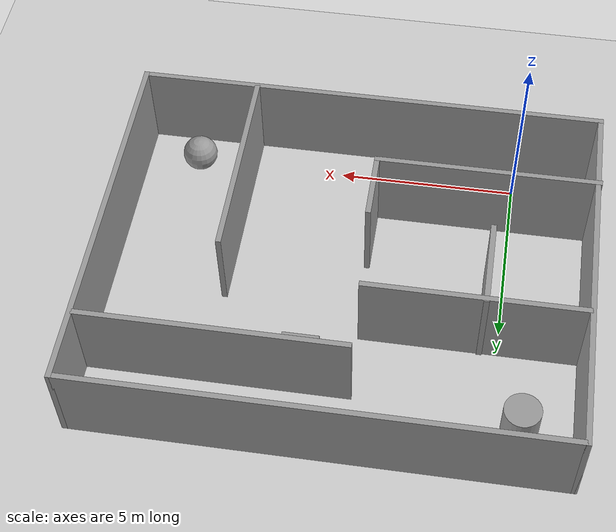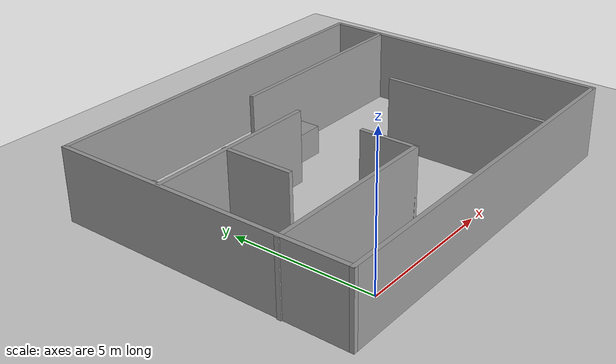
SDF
<sdf version="1.6">
 <world name="default">
  <light name="sun" type="directional">
   <pose>0 0 10 0 -0 0</pose>
   <diffuse>0.8 0.8 0.8 1</diffuse>
   <specular>0.2 0.2 0.2 1</specular>
   <attenuation>
    <range>1000</range>
    <constant>0.9</constant>
    <linear>0.01</linear>
    <quadratic>0.001</quadratic>
   </attenuation>
   <direction>-0.5 0.1 -0.9</direction>
  </light>
  <model name="ground_plane">
   <static>1</static>
   <link name="link">
    <collision name="collision">
     <geometry><plane><normal>0 0 1</normal><size>100 100</size></plane></geometry>
     <surface>
      <contact><collide_bitmask>65535</collide_bitmask></contact>
      <friction><ode><mu>100</mu><mu2>50</mu2></ode></friction>
     </surface>
    </collision>
    <visual name="visual">
     <cast_shadows>0</cast_shadows>
     <geometry><plane><normal>0 0 1</normal><size>100 100</size></plane></geometry>
     <material>
      <script><uri>file://media/materials/scripts/gazebo.material</uri><name>Gazebo/Grey</name></script>
     </material>
    </visual>
   </link>
  </model>
  <gravity>0 0 -9.8</gravity>
  <magnetic_field>6e-06 2.3e-05 -4.2e-05</magnetic_field>
  <atmosphere type="adiabatic"/>
  <physics name="default_physics" default="0" type="ode">
   <max_step_size>0.001</max_step_size>
   <real_time_factor>1</real_time_factor>
   <real_time_update_rate>1000</real_time_update_rate>
  </physics>
  <scene><ambient>0.4 0.4 0.4 1</ambient><background>0.7 0.7 0.7 1</background><shadows>1</shadows></scene>
  <audio><device>default</device></audio>
  <spherical_coordinates>
   <surface_model>EARTH_WGS84</surface_model>
   <latitude_deg>0</latitude_deg>
   <longitude_deg>0</longitude_deg>
   <elevation>0</elevation>
   <heading_deg>0</heading_deg>
  </spherical_coordinates>
  <model name="room1">
   <pose>4.30941 4.255 0 0 -0 0</pose>
   <link name="Wall_0">
    <collision name="Wall_0_Collision">
     <geometry><box><size>10.5 0.15 2.5</size></box></geometry>
     <pose>0 0 1.25 0 -0 0</pose>
    </collision>
    <visual name="Wall_0_Visual">
     <pose>0 0 1.25 0 -0 0</pose>
     <geometry><box><size>10.5 0.15 2.5</size></box></geometry>
     <material>
      <script><uri>file://media/materials/scripts/gazebo.material</uri><name>Gazebo/Grey</name></script>
      <ambient>1 1 1 1</ambient>
     </material>
     <meta><layer>0</layer></meta>
    </visual>
    <pose>-6.52941 -0 0 0 -0 1.5708</pose>
   </link>
   <link name="Wall_1">
    <collision name="Wall_1_Collision">
     <geometry><box><size>13.25 0.15 2.5</size></box></geometry>
     <pose>0 0 1.25 0 -0 0</pose>
    </collision>
    <visual name="Wall_1_Visual">
     <pose>0 0 1.25 0 -0 0</pose>
     <geometry><box><size>13.25 0.15 2.5</size></box></geometry>
     <material>
      <script><uri>file://media/materials/scripts/gazebo.material</uri><name>Gazebo/Grey</name></script>
      <ambient>1 1 1 1</ambient>
     </material>
     <meta><layer>0</layer></meta>
    </visual>
    <pose>0.020592 5.175 0 0 -0 0</pose>
   </link>
   <link name="Wall_11">
    <collision name="Wall_11_Collision">
     <geometry><box><size>7.25 0.15 2.5</size></box></geometry>
     <pose>0 0 1.25 0 -0 0</pose>
    </collision>
    <visual name="Wall_11_Visual">
     <pose>0 0 1.25 0 -0 0</pose>
     <geometry><box><size>7.25 0.15 2.5</size></box></geometry>
     <material>
      <script><uri>file://media/materials/scripts/gazebo.material</uri><name>Gazebo/Grey</name></script>
      <ambient>1 1 1 1</ambient>
     </material>
     <meta><layer>0</layer></meta>
    </visual>
    <pose>2.99403 3.26734 0 0 -0 3.14159</pose>
   </link>
   <link name="Wall_13">
    <collision name="Wall_13_Collision">
     <geometry><box><size>6 0.15 2.5</size></box></geometry>
     <pose>0 0 1.25 0 -0 0</pose>
    </collision>
    <visual name="Wall_13_Visual">
     <pose>0 0 1.25 0 -0 0</pose>
     <geometry><box><size>6 0.15 2.5</size></box></geometry>
     <material>
      <script><uri>file://media/materials/scripts/gazebo.material</uri><name>Gazebo/Grey</name></script>
      <ambient>1 1 1 1</ambient>
     </material>
     <meta><layer>0</layer></meta>
    </visual>
    <pose>-3.54712 1.36769 0 0 -0 0</pose>
   </link>
   <link name="Wall_15">
    <collision name="Wall_15_Collision">
     <geometry><box><size>2.5 0.15 2.5</size></box></geometry>
     <pose>0 0 1.25 0 -0 0</pose>
    </collision>
    <visual name="Wall_15_Visual">
     <pose>0 0 1.25 0 -0 0</pose>
     <geometry><box><size>2.5 0.15 2.5</size></box></geometry>
     <material>
      <script><uri>file://media/materials/scripts/gazebo.material</uri><name>Gazebo/Grey</name></script>
      <ambient>1 1 1 1</ambient>
     </material>
     <meta><layer>0</layer></meta>
    </visual>
    <pose>-3.83371 0.227866 0 0 -0 -1.5708</pose>
   </link>
   <link name="Wall_2">
    <collision name="Wall_2_Collision">
     <geometry><box><size>10.5 0.15 2.5</size></box></geometry>
     <pose>0 0 1.25 0 -0 0</pose>
    </collision>
    <visual name="Wall_2_Visual">
     <pose>0 0 1.25 0 -0 0</pose>
     <geometry><box><size>10.5 0.15 2.5</size></box></geometry>
     <material>
      <script><uri>file://media/materials/scripts/gazebo.material</uri><name>Gazebo/Grey</name></script>
      <ambient>1 1 1 1</ambient>
     </material>
     <meta><layer>0</layer></meta>
    </visual>
    <pose>6.57059 -0 0 0 -0 -1.5708</pose>
   </link>
   <link name="Wall_3">
    <collision name="Wall_3_Collision">
     <geometry><box><size>13.25 0.15 2.5</size></box></geometry>
     <pose>0 0 1.25 0 -0 0</pose>
    </collision>
    <visual name="Wall_3_Visual">
     <pose>0 0 1.25 0 -0 0</pose>
     <geometry><box><size>13.25 0.15 2.5</size></box></geometry>
     <material>
      <script><uri>file://media/materials/scripts/gazebo.material</uri><name>Gazebo/Grey</name></script>
      <ambient>1 1 1 1</ambient>
     </material>
     <meta><layer>0</layer></meta>
    </visual>
    <pose>0.020592 -5.175 0 0 -0 3.14159</pose>
   </link>
   <link name="Wall_6">
    <collision name="Wall_6_Collision">
     <geometry><box><size>6.25 0.15 2.5</size></box></geometry>
     <pose>0 0 1.25 0 -0 0</pose>
    </collision>
    <visual name="Wall_6_Visual">
     <pose>0 0 1.25 0 -0 0</pose>
     <geometry><box><size>6.25 0.15 2.5</size></box></geometry>
     <material>
      <script><uri>file://media/materials/scripts/gazebo.material</uri><name>Gazebo/Grey</name></script>
      <ambient>1 1 1 1</ambient>
     </material>
     <meta><layer>0</layer></meta>
    </visual>
    <pose>-3.52059 -2.89108 0 0 -0 0</pose>
   </link>
   <link name="Wall_7">
    <collision name="Wall_7_Collision">
     <geometry><box><size>2 0.15 2.5</size></box></geometry>
     <pose>0 0 1.25 0 -0 0</pose>
    </collision>
    <visual name="Wall_7_Visual">
     <pose>0 0 1.25 0 -0 0</pose>
     <geometry><box><size>2 0.15 2.5</size></box></geometry>
     <material>
      <script><uri>file://media/materials/scripts/gazebo.material</uri><name>Gazebo/Grey</name></script>
      <ambient>1 1 1 1</ambient>
     </material>
     <meta><layer>0</layer></meta>
    </visual>
    <pose>-0.470593 -1.96608 0 0 -0 1.5708</pose>
   </link>
   <link name="Wall_9">
    <collision name="Wall_9_Collision">
     <geometry><box><size>5.75 0.15 2.5</size></box></geometry>
     <pose>0 0 1.25 0 -0 0</pose>
    </collision>
    <visual name="Wall_9_Visual">
     <pose>0 0 1.25 0 -0 0</pose>
     <geometry><box><size>5.75 0.15 2.5</size></box></geometry>
     <material>
      <script><uri>file://media/materials/scripts/gazebo.material</uri><name>Gazebo/Grey</name></script>
      <ambient>1 1 1 1</ambient>
     </material>
     <meta><layer>0</layer></meta>
    </visual>
    <pose>3.29808 -2.29889 0 0 -0 1.5708</pose>
   </link>
   <static>1</static>
  </model>
  <model name="unit_box">
   <pose>5.18771 6.89673 0.499995 0 1e-05 0</pose>
   <link name="link">
    <inertial>
     <mass>1</mass>
     <inertia>
      <ixx>0.166667</ixx>
      <ixy>0</ixy>
      <ixz>0</ixz>
      <iyy>0.166667</iyy>
      <iyz>0</iyz>
      <izz>0.166667</izz>
     </inertia>
    </inertial>
    <collision name="collision"><geometry><box><size>1 1 1</size></box></geometry></collision>
    <visual name="visual">
     <geometry><box><size>1 1 1</size></box></geometry>
     <material>
      <script><name>Gazebo/Grey</name><uri>file://media/materials/scripts/gazebo.material</uri></script>
     </material>
    </visual>
   </link>
  </model>
  <model name="unit_cylinder">
   <pose>-0.747389 7.87233 0.499993 -3e-06 -4e-06 -0</pose>
   <link name="link">
    <inertial>
     <mass>1</mass>
     <inertia><ixx>0.145833</ixx><ixy>0</ixy><ixz>0</ixz><iyy>0.145833</iyy><iyz>0</iyz><izz>0.125</izz></inertia>
    </inertial>
    <collision name="collision">
     <geometry><cylinder><radius>0.5</radius><length>1</length></cylinder></geometry>
    </collision>
    <visual name="visual">
     <geometry><cylinder><radius>0.5</radius><length>1</length></cylinder></geometry>
     <material>
      <script><name>Gazebo/Grey</name><uri>file://media/materials/scripts/gazebo.material</uri></script>
     </material>
    </visual>
   </link>
  </model>
  <model name="unit_sphere">
   <pose>9.23751 0.143151 0.5 0 -0 0</pose>
   <link name="link">
    <inertial>
     <mass>1</mass>
     <inertia><ixx>0.1</ixx><ixy>0</ixy><ixz>0</ixz><iyy>0.1</iyy><iyz>0</iyz><izz>0.1</izz></inertia>
    </inertial>
    <collision name="collision"><geometry><sphere><radius>0.5</radius></sphere></geometry></collision>
    <visual name="visual">
     <geometry><sphere><radius>0.5</radius></sphere></geometry>
     <material>
      <script><name>Gazebo/Grey</name><uri>file://media/materials/scripts/gazebo.material</uri></script>
     </material>
    </visual>
   </link>
  </model>
 </world>
</sdf>
